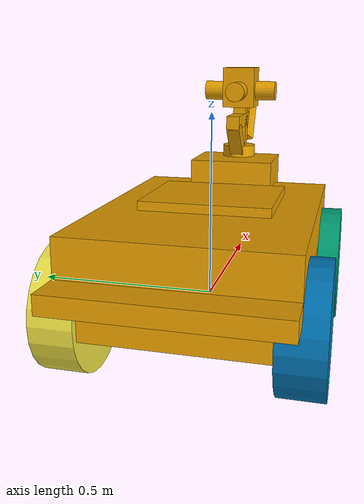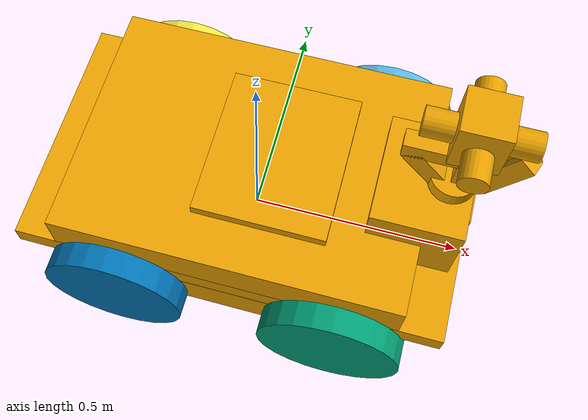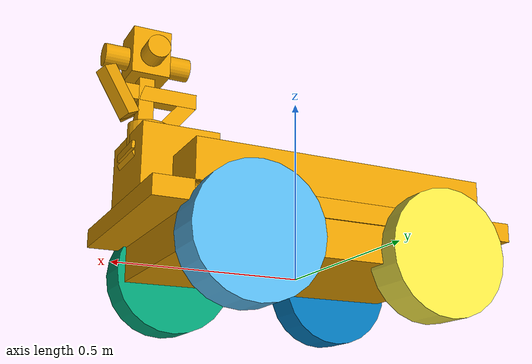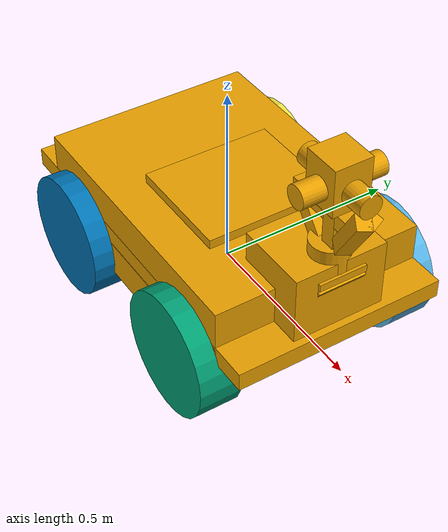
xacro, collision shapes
<?xml version='1.0' encoding='utf-8'?>
<robot name='marble_husky_sensor_config_6' xmlns:xacro='http://ros.org/wiki/xacro'>
  <xacro:arg name="name" default="marble_husky_sensor_config_6"/>
  <xacro:property name="robot_namespace" value="$(arg name)"/>
  <link name='${robot_namespace}/base_link'>
    <inertial>
      <origin xyz='-0.000543 -0.084945 0.062329' rpy='0 -0 0'/>
      <mass value='46.064'/>
      <inertia ixx='0.615397' ixy='-0.0240585' ixz='-0.120749' iyy='1.75388' iyz='-0.0028322' izz='2.03641'/>
    </inertial>
    <collision name='base_link_collision'>
      <origin xyz='0 0 0.12' rpy='0 -0 0'/>
      <geometry>
        <box size='0.9874 0.5709 0.05'/>
      </geometry>
    </collision>
    <collision name='base_link_collision_bottom'>
      <origin xyz='0 0 0.046' rpy='0 -0 0'/>
      <geometry>
        <box size='0.8 0.5709 0.095'/>
      </geometry>
    </collision>
    <collision name='base_link_collision_1'>
      <origin xyz='0 0 0.185625' rpy='0 -0 0'/>
      <geometry>
        <box size='0.78992 0.5709 0.12375'/>
      </geometry>
    </collision>
    <collision name='base_link_fixed_joint_lump__camera/camera_link_collision_2'>
      <origin xyz='0.478 0 0.285' rpy='0 -0 0'/>
      <geometry>
        <box size='0.0078 0.13 0.0192'/>
      </geometry>
    </collision>
    <collision name='base_link_fixed_joint_lump__camera/camera_link_collision_3'>
      <origin xyz='0.473 0 0.26' rpy='0 0.5236 0'/>
      <geometry>
        <box size='0.0078 0.13 0.0192'/>
      </geometry>
    </collision>
    <collision name='base_link_fixed_joint_lump__velodyne_base_link_collision_6'>
      <origin xyz='0.424 0 0.327' rpy='0 -0 0'/>
      <geometry>
        <cylinder radius='0.0516' length='0.0717'/>
      </geometry>
    </collision>
    <collision name='base_link_fixed_joint_lump__sensor_tower_8'>
      <origin xyz='0.374 0 0.215' rpy='0 -0 0'/>
      <geometry>
        <box size='0.2 0.25 0.225'/>
      </geometry>
    </collision>
    <collision name='base_link_fixed_joint_lump__computer_block_9'>
      <origin xyz='0.05 0 0.185' rpy='0 -0 0'/>
      <geometry>
        <box size='0.3 0.355 0.175'/>
      </geometry>
    </collision>
    <collision name='tof_left_camera_mount_collision'>
      <origin xyz='0.5105 0.01 0.439' rpy='-1.34452 0.47634 0.465309'/>
      <geometry>
        <box size='0.04 0.135 0.0385'/>
      </geometry>
    </collision>
    <collision name='tof_right_camera_mount_collision'>
      <origin xyz='0.5105 -0.01 0.439' rpy='-1.79707 0.47634 -0.465309'/>
      <geometry>
        <box size='0.04 0.135 0.0385'/>
      </geometry>
    </collision>
    <collision name='sensor_head_collision'>
      <origin xyz='0.4379 0 0.54818' rpy='0 -0 0'/>
      <geometry>
        <box size='0.1 0.1 0.125'/>
      </geometry>
    </collision>
    <collision name='sensor_tower_support_collision'>
      <origin xyz='0.4379 0 0.39918' rpy='0 -0 0'/>
      <geometry>
        <box size='0.04 0.04 0.25'/>
      </geometry>
    </collision>
    <collision name='vertical_lidar_support_collision'>
      <origin xyz='0.4029 0 0.44418' rpy='0 -0 0'/>
      <geometry>
        <box size='0.2 0.04 0.04'/>
      </geometry>
    </collision>
    <collision name='diagonal_lidar_support_collision'>
      <origin xyz='0.3779 0 0.36418' rpy='0 0.8854 0'/>
      <geometry>
        <box size='0.18 0.04 0.04'/>
      </geometry>
    </collision>
    <collision name='camera_front_collision'>
      <origin xyz='0.5179 0 0.53718' rpy='3.14159 1.57069 3.14159'/>
      <geometry>
        <cylinder radius='0.03' length='0.065'/>
      </geometry>
    </collision>
    <collision name='camera_back_collision'>
      <origin xyz='0.3579 0 0.53718' rpy='3.14159 1.57069 3.14159'/>
      <geometry>
        <cylinder radius='0.03' length='0.065'/>
      </geometry>
    </collision>
    <collision name='camera_left_collision'>
      <origin xyz='0.4379 0.08 0.53718' rpy='1.5709 -0 0'/>
      <geometry>
        <cylinder radius='0.03' length='0.065'/>
      </geometry>
    </collision>
    <collision name='camera_right_collision'>
      <origin xyz='0.4379 -0.08 0.53718' rpy='1.5709 -0 0'/>
      <geometry>
        <cylinder radius='0.03' length='0.065'/>
      </geometry>
    </collision>
    <visual name='base_link_visual'>
      <origin xyz='0 0 0' rpy='0 -0 0'/>
      <geometry>
        <mesh filename='package://marble_husky_sensor_config_6/meshes/base_link.dae' scale='1 1 1'/>
      </geometry>
    </visual>
    <visual name='base_link_fixed_joint_lump__front_bumper_link_visual_3'>
      <origin xyz='0.48 0 0.091' rpy='0 -0 0'/>
      <geometry>
        <mesh filename='package://marble_husky_sensor_config_6/meshes/bumper.dae' scale='1 1 1'/>
      </geometry>
    </visual>
    <visual name='base_link_fixed_joint_lump__rear_bumper_link_visual_4'>
      <origin xyz='-0.48 0 0.091' rpy='0 -0 3.14159'/>
      <geometry>
        <mesh filename='package://marble_husky_sensor_config_6/meshes/bumper.dae' scale='1 1 1'/>
      </geometry>
    </visual>
    <visual name='base_link_fixed_joint_lump__top_chassis_link_visual_5'>
      <origin xyz='0 0 0' rpy='0 -0 0'/>
      <geometry>
        <mesh filename='package://marble_husky_sensor_config_6/meshes/top_chassis.dae' scale='1 1 1'/>
      </geometry>
    </visual>
    <visual name='base_link_fixed_joint_lump__user_rail_link_visual_13'>
      <origin xyz='0.272 0 0.245' rpy='0 -0 0'/>
      <geometry>
        <mesh filename='package://marble_husky_sensor_config_6/meshes/user_rail.dae' scale='1 1 1'/>
      </geometry>
    </visual>
    <visual name='base_link_fixed_joint_lump__planar_lidar_link_visual_14'>
      <origin xyz='0.474 0 0.127' rpy='0 -0 0'/>
      <geometry>
        <cylinder radius='0.045' length='0.05'/>
      </geometry>
    </visual>
    <visual name='base_link_fixed_joint_lump__sensor_tower_16'>
      <origin xyz='0.374 0 0.215' rpy='0 -0 0'/>
      <geometry>
        <box size='0.2 0.25 0.225'/>
      </geometry>
    </visual>
    <visual name='base_link_fixed_joint_lump__computer_block_17'>
      <origin xyz='0.05 0 0.185' rpy='0 -0 0'/>
      <geometry>
        <box size='0.3 0.355 0.175'/>
      </geometry>
    </visual>
    <visual name='tof_left_camera_visual'>
      <origin xyz='0.527 0.015 0.429' rpy='-1.34452 0.47634 0.465309'/>
      <geometry>
        <mesh filename='package://marble_husky_sensor_config_6/meshes/realsense.dae' scale='1 1 1'/>
      </geometry>
    </visual>
    <visual name='tof_left_camera_mount_visual'>
      <origin xyz='0.5105 0.01 0.439' rpy='-1.34452 0.47634 0.465309'/>
      <geometry>
        <box size='0.04 0.135 0.0385'/>
      </geometry>
    </visual>
    <visual name='tof_right_camera_visual'>
      <origin xyz='0.527 -0.015 0.429' rpy='-1.79707 0.47634 -0.465309'/>
      <geometry>
        <mesh filename='package://marble_husky_sensor_config_6/meshes/realsense.dae' scale='1 1 1'/>
      </geometry>
    </visual>
    <visual name='tof_right_camera_mount_visual'>
      <origin xyz='0.5105 -0.01 0.439' rpy='-1.79707 0.47634 -0.465309'/>
      <geometry>
        <box size='0.04 0.135 0.0385'/>
      </geometry>
    </visual>
    <visual name='sensor_head_visual'>
      <origin xyz='0.4379 0 0.54818' rpy='0 -0 0'/>
      <geometry>
        <box size='0.1 0.1 0.125'/>
      </geometry>
    </visual>
    <visual name='sensor_tower_support_visual'>
      <origin xyz='0.4379 0 0.39918' rpy='0 -0 0'/>
      <geometry>
        <box size='0.04 0.04 0.25'/>
      </geometry>
    </visual>
    <visual name='vertical_lidar_support_visual'>
      <origin xyz='0.4029 0 0.44418' rpy='0 -0 0'/>
      <geometry>
        <box size='0.2 0.04 0.04'/>
      </geometry>
    </visual>
    <visual name='diagonal_lidar_support_visual'>
      <origin xyz='0.3779 0 0.36418' rpy='0 0.8854 0'/>
      <geometry>
        <box size='0.18 0.04 0.04'/>
      </geometry>
    </visual>
    <visual name='base_link_fixed_joint_lump__velodyne_base_link_visual_10'>
      <origin xyz='0.4379 0 0.61018' rpy='0 -0 0'/>
      <geometry>
        <mesh filename='package://marble_husky_sensor_config_6/meshes/VLP16_base_1.dae' scale='1 1 1'/>
      </geometry>
    </visual>
    <visual name='base_link_fixed_joint_lump__velodyne_base_link_visual_11'>
      <origin xyz='0.4379 0 0.61018' rpy='0 -0 0'/>
      <geometry>
        <mesh filename='package://marble_husky_sensor_config_6/meshes/VLP16_base_2.dae' scale='1 1 1'/>
      </geometry>
    </visual>
    <visual name='base_link_fixed_joint_lump__velodyne_visual_12'>
      <origin xyz='0.4379 0 0.61018' rpy='0 -0 0'/>
      <geometry>
        <mesh filename='package://marble_husky_sensor_config_6/meshes/VLP16_scan.dae' scale='1 1 1'/>
      </geometry>
    </visual>
    <visual name='base_link_fixed_joint_lump__velodyne_base_link_visual_13'>
      <origin xyz='0.31037 0 0.44818' rpy='3.14159 -1.57079 3.14159'/>
      <geometry>
        <mesh filename='package://marble_husky_sensor_config_6/meshes/VLP16_base_1.dae' scale='1 1 1'/>
      </geometry>
    </visual>
    <visual name='base_link_fixed_joint_lump__velodyne_base_link_visual_14'>
      <origin xyz='0.31037 0 0.44818' rpy='3.14159 -1.57079 3.14159'/>
      <geometry>
        <mesh filename='package://marble_husky_sensor_config_6/meshes/VLP16_base_2.dae' scale='1 1 1'/>
      </geometry>
    </visual>
    <visual name='base_link_fixed_joint_lump__velodyne_visual_15'>
      <origin xyz='0.31037 0 0.44818' rpy='3.14159 -1.57079 3.14159'/>
      <geometry>
        <mesh filename='package://marble_husky_sensor_config_6/meshes/VLP16_scan.dae' scale='1 1 1'/>
      </geometry>
    </visual>
    <visual name='camera_front_visual'>
      <origin xyz='0.5179 0 0.53718' rpy='3.14159 1.57069 3.14159'/>
      <geometry>
        <cylinder radius='0.03' length='0.065'/>
      </geometry>
    </visual>
    <visual name='camera_back_visual'>
      <origin xyz='0.3579 0 0.53718' rpy='3.14159 1.57069 3.14159'/>
      <geometry>
        <cylinder radius='0.03' length='0.065'/>
      </geometry>
    </visual>
    <visual name='camera_left_visual'>
      <origin xyz='0.4379 0.08 0.53718' rpy='1.5709 -0 0'/>
      <geometry>
        <cylinder radius='0.03' length='0.065'/>
      </geometry>
    </visual>
    <visual name='camera_right_visual'>
      <origin xyz='0.4379 -0.08 0.53718' rpy='1.5709 -0 0'/>
      <geometry>
        <cylinder radius='0.03' length='0.065'/>
      </geometry>
    </visual>
  </link>
  <sensor name='planar_laser' update_rate='20'>
    <parent link='${robot_namespace}/base_link'/>
    <origin xyz='0.485 0 0.166' rpy='0 -0 0'/>
  </sensor>
  <sensor name='tof_left' update_rate='10'>
    <parent link='${robot_namespace}/base_link'/>
    <origin xyz='0.527 0.015 0.429' rpy='-1.34452 0.47634 0.465309'/>
    <camera>
      <image width='224' height='171' format='R8G8B8' hfov='1.0821' near='0.1' far='4' />
    </camera>
  </sensor>
  <sensor name='tof_right' update_rate='10'>
    <parent link='${robot_namespace}/base_link'/>
    <origin xyz='0.527 -0.015 0.429' rpy='-1.79707 0.47634 -0.465309'/>
    <camera>
      <image width='224' height='171' format='R8G8B8' hfov='1.0821' near='0.1' far='4' />
    </camera>
  </sensor>
  <sensor name='imu_sensor' update_rate='200'>
    <parent link='${robot_namespace}/base_link'/>
    <origin xyz='0 0 0' rpy='0 -0 0'/>
  </sensor>
  <sensor name='front_laser' update_rate='10'>
    <parent link='${robot_namespace}/base_link'/>
    <origin xyz='0.4379 0 0.67018' rpy='0 -0 0'/>
  </sensor>
  <sensor name='vert_laser' update_rate='10'>
    <parent link='${robot_namespace}/base_link'/>
    <origin xyz='0.31037 0 0.44818' rpy='3.14159 -1.57079 3.14159'/>
  </sensor>
  <sensor name='camera_front' update_rate='10'>
    <parent link='${robot_namespace}/base_link'/>
    <origin xyz='0.5579 0 0.53718' rpy='0 -0 0'/>
    <camera>
      <image width='808' height='608' format='R8G8B8' hfov='1.39626' near='0.01' far='300' />
    </camera>
  </sensor>
  <sensor name='camera_back' update_rate='10'>
    <parent link='${robot_namespace}/base_link'/>
    <origin xyz='0.3179 0 0.53718' rpy='0 -0 3.14159'/>
    <camera>
      <image width='808' height='608' format='R8G8B8' hfov='1.39626' near='0.01' far='300' />
    </camera>
  </sensor>
  <sensor name='camera_left' update_rate='10'>
    <parent link='${robot_namespace}/base_link'/>
    <origin xyz='0.4379 0.12 0.53718' rpy='0 -0 1.5708'/>
    <camera>
      <image width='808' height='608' format='R8G8B8' hfov='1.39626' near='0.01' far='300' />
    </camera>
  </sensor>
  <sensor name='camera_right' update_rate='10'>
    <parent link='${robot_namespace}/base_link'/>
    <origin xyz='0.4379 -0.12 0.53718' rpy='0 0 -1.5708'/>
    <camera>
      <image width='808' height='608' format='R8G8B8' hfov='1.39626' near='0.01' far='300' />
    </camera>
  </sensor>
  <link name='${robot_namespace}/front_left_wheel_link'>
    <inertial>
      <origin xyz='0 0 0' rpy='0 -0 0'/>
      <mass value='2.637'/>
      <inertia ixx='0.02467' ixy='0' ixz='0' iyy='0.04411' iyz='0' izz='0.02467'/>
    </inertial>
    <collision name='front_left_wheel_link_collision'>
      <origin xyz='0 0 0' rpy='1.5708 -0 0'/>
      <geometry>
        <cylinder radius='0.1651' length='0.1143'/>
      </geometry>
    </collision>
    <visual name='front_left_wheel_link_visual'>
      <origin xyz='0 0 0' rpy='0 -0 0'/>
      <geometry>
        <mesh filename='package://marble_husky_sensor_config_6/meshes/wheel.dae' scale='1 1 1'/>
      </geometry>
    </visual>
  </link>
  <link name='${robot_namespace}/front_right_wheel_link'>
    <inertial>
      <origin xyz='0 0 0' rpy='0 -0 0'/>
      <mass value='2.637'/>
      <inertia ixx='0.02467' ixy='0' ixz='0' iyy='0.04411' iyz='0' izz='0.02467'/>
    </inertial>
    <collision name='front_right_wheel_link_collision'>
      <origin xyz='0 0 0' rpy='1.5708 -0 0'/>
      <geometry>
        <cylinder radius='0.1651' length='0.1143'/>
      </geometry>
    </collision>
    <visual name='front_right_wheel_link_visual'>
      <origin xyz='0 0 0' rpy='0 -0 0'/>
      <geometry>
        <mesh filename='package://marble_husky_sensor_config_6/meshes/wheel.dae' scale='1 1 1'/>
      </geometry>
    </visual>
  </link>
  <link name='${robot_namespace}/rear_left_wheel_link'>
    <inertial>
      <origin xyz='0 0 0' rpy='0 -0 0'/>
      <mass value='2.637'/>
      <inertia ixx='0.02467' ixy='0' ixz='0' iyy='0.04411' iyz='0' izz='0.02467'/>
    </inertial>
    <collision name='rear_left_wheel_link_collision'>
      <origin xyz='0 0 0' rpy='1.5708 -0 0'/>
      <geometry>
        <cylinder radius='0.1651' length='0.1143'/>
      </geometry>
    </collision>
    <visual name='rear_left_wheel_link_visual'>
      <origin xyz='0 0 0' rpy='0 -0 0'/>
      <geometry>
        <mesh filename='package://marble_husky_sensor_config_6/meshes/wheel.dae' scale='1 1 1'/>
      </geometry>
    </visual>
  </link>
  <link name='${robot_namespace}/rear_right_wheel_link'>
    <inertial>
      <origin xyz='0 0 0' rpy='0 -0 0'/>
      <mass value='2.637'/>
      <inertia ixx='0.02467' ixy='0' ixz='0' iyy='0.04411' iyz='0' izz='0.02467'/>
    </inertial>
    <collision name='rear_right_wheel_link_collision'>
      <origin xyz='0 0 0' rpy='1.5708 -0 0'/>
      <geometry>
        <cylinder radius='0.1651' length='0.1143'/>
      </geometry>
    </collision>
    <visual name='rear_right_wheel_link_visual'>
      <origin xyz='0 0 0' rpy='0 -0 0'/>
      <geometry>
        <mesh filename='package://marble_husky_sensor_config_6/meshes/wheel.dae' scale='1 1 1'/>
      </geometry>
    </visual>
  </link>
  <joint name='front_left_wheel_joint' type='revolute'>
    <origin xyz='0.256 0.2854 0.03282' rpy='0 -0 0'/>
    <parent link='${robot_namespace}/base_link'/>
    <child link='${robot_namespace}/front_left_wheel_link'/>
    <dynamics damping='0' friction='0' />
    <axis xyz='0 1 0'/>
    <limit lower='-1e+16' upper='1e+16' effort='-1' velocity='-1'/>
  </joint>
  <joint name='front_right_wheel_joint' type='revolute'>
    <origin xyz='0.256 -0.2854 0.03282' rpy='0 -0 0'/>
    <parent link='${robot_namespace}/base_link'/>
    <child link='${robot_namespace}/front_right_wheel_link'/>
    <dynamics damping='0' friction='0' />
    <axis xyz='0 1 0'/>
    <limit lower='-1e+16' upper='1e+16' effort='-1' velocity='-1'/>
  </joint>
  <joint name='rear_left_wheel_joint' type='revolute'>
    <origin xyz='-0.256 0.2854 0.03282' rpy='0 -0 0'/>
    <parent link='${robot_namespace}/base_link'/>
    <child link='${robot_namespace}/rear_left_wheel_link'/>
    <dynamics damping='0' friction='0' />
    <axis xyz='0 1 0'/>
    <limit lower='-1e+16' upper='1e+16' effort='-1' velocity='-1'/>
  </joint>
  <joint name='rear_right_wheel_joint' type='revolute'>
    <origin xyz='-0.256 -0.2854 0.03282' rpy='0 -0 0'/>
    <parent link='${robot_namespace}/base_link'/>
    <child link='${robot_namespace}/rear_right_wheel_link'/>
    <dynamics damping='0' friction='0' />
    <axis xyz='0 1 0'/>
    <limit lower='-1e+16' upper='1e+16' effort='-1' velocity='-1'/>
  </joint>
</robot>
